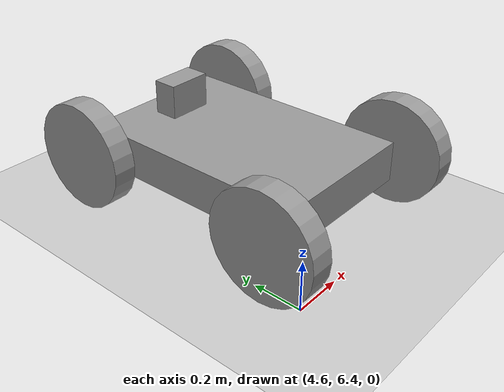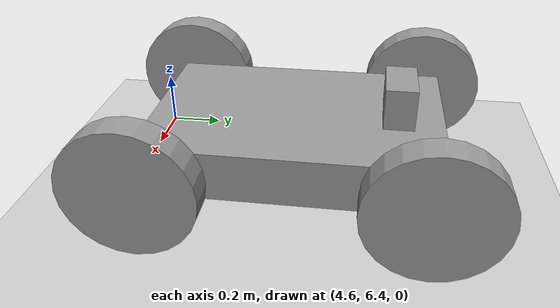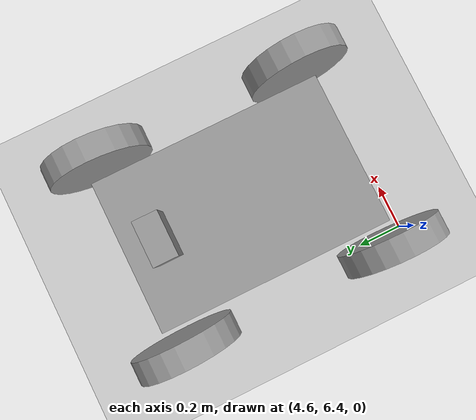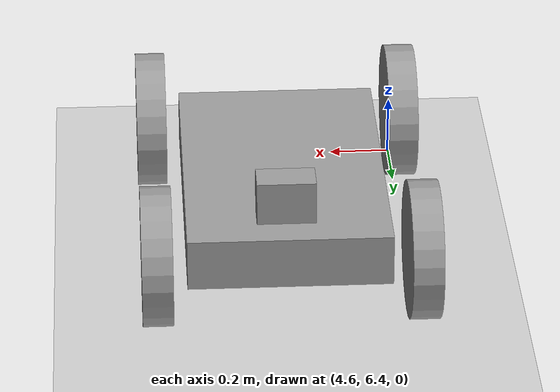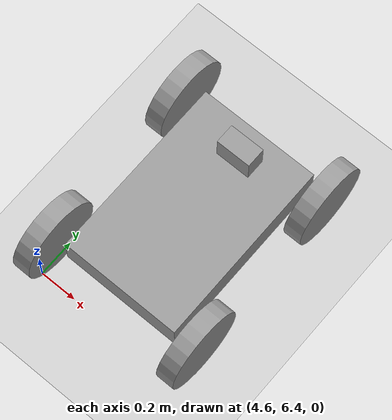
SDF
<sdf version="1.6">
 <world name="default">
  <light name="sun" type="directional">
   <pose>0 0 10 0 -0 0</pose>
   <diffuse>0.8 0.8 0.8 1</diffuse>
   <specular>0.2 0.2 0.2 1</specular>
   <attenuation>
    <range>1000</range>
    <constant>0.9</constant>
    <linear>0.01</linear>
    <quadratic>0.001</quadratic>
   </attenuation>
   <direction>-0.5 0.1 -0.9</direction>
  </light>
  <model name="ground_plane">
   <static>1</static>
   <link name="link">
    <collision name="collision">
     <geometry><plane><normal>0 0 1</normal><size>100 100</size></plane></geometry>
     <surface>
      <contact><collide_bitmask>65535</collide_bitmask></contact>
      <friction><ode><mu>100</mu><mu2>50</mu2></ode></friction>
     </surface>
    </collision>
    <visual name="visual">
     <cast_shadows>0</cast_shadows>
     <geometry><plane><normal>0 0 1</normal><size>100 100</size></plane></geometry>
     <material>
      <script><uri>file://media/materials/scripts/gazebo.material</uri><name>Gazebo/Grey</name></script>
     </material>
    </visual>
   </link>
  </model>
  <gravity>0 0 -9.8</gravity>
  <magnetic_field>6e-06 2.3e-05 -4.2e-05</magnetic_field>
  <atmosphere type="adiabatic"/>
  <physics name="default_physics" default="0" type="ode">
   <max_step_size>0.001</max_step_size>
   <real_time_factor>1</real_time_factor>
   <real_time_update_rate>1000</real_time_update_rate>
  </physics>
  <scene><ambient>0.4 0.4 0.4 1</ambient><background>0.7 0.7 0.7 1</background><shadows>1</shadows></scene>
  <audio><device>default</device></audio>
  <spherical_coordinates>
   <surface_model>EARTH_WGS84</surface_model>
   <latitude_deg>0</latitude_deg>
   <longitude_deg>0</longitude_deg>
   <elevation>0</elevation>
   <heading_deg>0</heading_deg>
  </spherical_coordinates>
  <include><name>marlin</name><pose>5 7 0.23 0 0 0</pose><uri>model://marlin</uri></include>
 </world>
</sdf>

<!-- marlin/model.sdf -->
<sdf version='1.6'>
  <model name='roadrunner3'>
    <link name='link_1'>
      <inertial>
        <mass>5</mass>
        <inertia>
          <ixx>0.428684</ixx>
          <ixy>0</ixy>
          <ixz>0</ixz>
          <iyy>0.190336</iyy>
          <iyz>0</iyz>
          <izz>0.594986</izz>
        </inertia>
        <pose frame=''>0 0 0 0 -0 0</pose>
      </inertial>
      <pose frame=''>-0 0.00914 -0.007545 0 -0 0</pose>
      <gravity>1</gravity>
      <self_collide>0</self_collide>
      <kinematic>0</kinematic>
      <enable_wind>0</enable_wind>
      <visual name='visual'>
        <pose frame=''>0 0 0 0 -0 0</pose>
        <geometry>
          <box>
            <size>0.654191 1 0.169826</size>
          </box>
        </geometry>
        <material>
          <lighting>1</lighting>
          <script>
            <uri>file://media/materials/scripts/gazebo.material</uri>
            <name>Gazebo/Grey</name>
          </script>
          <shader type='vertex'>
            <normal_map>__default__</normal_map>
          </shader>
          <ambient>0.3 0.3 0.3 1</ambient>
          <diffuse>0.7 0.7 0.7 1</diffuse>
          <specular>0.01 0.01 0.01 1</specular>
          <emissive>0 0 0 1</emissive>
        </material>
        <transparency>0</transparency>
        <cast_shadows>1</cast_shadows>
      </visual>
      <collision name='collision'>
        <laser_retro>0</laser_retro>
        <max_contacts>10</max_contacts>
        <pose frame=''>0 0 0 0 -0 0</pose>
        <geometry>
          <box>
            <size>0.654191 1 0.169826</size>
          </box>
        </geometry>
        <surface>
          <friction>
            <ode>
              <mu>1</mu>
              <mu2>1</mu2>
              <fdir1>0 0 0</fdir1>
              <slip1>0</slip1>
              <slip2>0</slip2>
            </ode>
            <torsional>
              <coefficient>1</coefficient>
              <patch_radius>0</patch_radius>
              <surface_radius>0</surface_radius>
              <use_patch_radius>1</use_patch_radius>
              <ode>
                <slip>0</slip>
              </ode>
            </torsional>
          </friction>
          <bounce>
            <restitution_coefficient>0</restitution_coefficient>
            <threshold>1e+06</threshold>
          </bounce>
          <contact>
            <collide_without_contact>0</collide_without_contact>
            <collide_without_contact_bitmask>1</collide_without_contact_bitmask>
            <collide_bitmask>1</collide_bitmask>
            <ode>
              <soft_cfm>0</soft_cfm>
              <soft_erp>0.2</soft_erp>
              <kp>1e+13</kp>
              <kd>1</kd>
              <max_vel>0.01</max_vel>
              <min_depth>0</min_depth>
            </ode>
            <bullet>
              <split_impulse>1</split_impulse>
              <split_impulse_penetration_threshold>-0.01</split_impulse_penetration_threshold>
              <soft_cfm>0</soft_cfm>
              <soft_erp>0.2</soft_erp>
              <kp>1e+13</kp>
              <kd>1</kd>
            </bullet>
          </contact>
        </surface>
      </collision>
    </link>
    <link name='link_1_0'>
      <inertial>
        <mass>0.00311427</mass>
        <inertia>
          <ixx>9.31086e-06</ixx>
          <ixy>0</ixy>
          <ixz>0</ixz>
          <iyy>1.57288e-05</iyy>
          <iyz>0</iyz>
          <izz>1.20857e-05</izz>
        </inertia>
        <pose frame=''>0 0 0 0 -0 0</pose>
      </inertial>
      <pose frame=''>0.007573 0.353081 0.141239 0 1e-06 -1e-05</pose>
      <visual name='visual'>
        <pose frame=''>0 0 0 0 -0 0</pose>
        <geometry>
          <box>
            <size>0.188811 0.104497 0.157979</size>
          </box>
        </geometry>
        <material>
          <lighting>1</lighting>
          <script>
            <uri>file://media/materials/scripts/gazebo.material</uri>
            <name>Gazebo/Grey</name>
          </script>
          <emissive>0 0 0 1</emissive>
        </material>
        <transparency>0</transparency>
        <cast_shadows>1</cast_shadows>
      </visual>
      <collision name='collision'>
        <laser_retro>0</laser_retro>
        <max_contacts>10</max_contacts>
        <pose frame=''>0 0 0 0 -0 0</pose>
        <geometry>
          <box>
            <size>0.188811 0.104497 0.157979</size>
          </box>
        </geometry>
        <surface>
          <friction>
            <ode>
              <mu>1</mu>
              <mu2>1</mu2>
              <fdir1>0 0 0</fdir1>
              <slip1>0</slip1>
              <slip2>0</slip2>
            </ode>
            <torsional>
              <coefficient>1</coefficient>
              <patch_radius>0</patch_radius>
              <surface_radius>0</surface_radius>
              <use_patch_radius>1</use_patch_radius>
              <ode>
                <slip>0</slip>
              </ode>
            </torsional>
          </friction>
          <bounce>
            <restitution_coefficient>0</restitution_coefficient>
            <threshold>1e+06</threshold>
          </bounce>
          <contact>
            <collide_without_contact>0</collide_without_contact>
            <collide_without_contact_bitmask>1</collide_without_contact_bitmask>
            <collide_bitmask>1</collide_bitmask>
            <ode>
              <soft_cfm>0</soft_cfm>
              <soft_erp>0.2</soft_erp>
              <kp>1e+13</kp>
              <kd>1</kd>
              <max_vel>0.01</max_vel>
              <min_depth>0</min_depth>
            </ode>
            <bullet>
              <split_impulse>1</split_impulse>
              <split_impulse_penetration_threshold>-0.01</split_impulse_penetration_threshold>
              <soft_cfm>0</soft_cfm>
              <soft_erp>0.2</soft_erp>
              <kp>1e+13</kp>
              <kd>1</kd>
            </bullet>
          </contact>
        </surface>
      </collision>
    </link>
    <link name='link_2'>
      <inertial>
        <mass>1</mass>
        <inertia>
          <ixx>0.0131563</ixx>
          <ixy>0</ixy>
          <ixz>0</ixz>
          <iyy>0.0131563</iyy>
          <iyz>0</iyz>
          <izz>0.0247202</izz>
        </inertia>
        <pose frame=''>0 0 0 0 -0 0</pose>
      </inertial>
      <pose frame=''>0.422661 -0.451098 0.001886 -3.14159 -1.57079 -3e-06</pose>
      <gravity>1</gravity>
      <self_collide>0</self_collide>
      <kinematic>0</kinematic>
      <enable_wind>0</enable_wind>
      <visual name='visual'>
        <pose frame=''>0 0 0 0 -0 0</pose>
        <geometry>
          <cylinder>
            <radius>0.222352</radius>
            <length>0.0977479</length>
          </cylinder>
        </geometry>
        <material>
          <lighting>1</lighting>
          <script>
            <uri>file://media/materials/scripts/gazebo.material</uri>
            <name>Gazebo/Grey</name>
          </script>
          <shader type='vertex'>
            <normal_map>__default__</normal_map>
          </shader>
          <ambient>0.3 0.3 0.3 1</ambient>
          <diffuse>0.7 0.7 0.7 1</diffuse>
          <specular>0.01 0.01 0.01 1</specular>
          <emissive>0 0 0 1</emissive>
        </material>
        <transparency>0</transparency>
        <cast_shadows>1</cast_shadows>
      </visual>
      <collision name='collision'>
        <laser_retro>0</laser_retro>
        <max_contacts>10</max_contacts>
        <pose frame=''>0 0 0 0 -0 0</pose>
        <geometry>
          <cylinder>
            <radius>0.222352</radius>
            <length>0.097748</length>
          </cylinder>
        </geometry>
        <surface>
          <friction>
            <ode>
              <mu>1</mu>
              <mu2>1</mu2>
              <fdir1>0 0 0</fdir1>
              <slip1>0</slip1>
              <slip2>0</slip2>
            </ode>
            <torsional>
              <coefficient>1</coefficient>
              <patch_radius>0</patch_radius>
              <surface_radius>0</surface_radius>
              <use_patch_radius>1</use_patch_radius>
              <ode>
                <slip>0</slip>
              </ode>
            </torsional>
          </friction>
          <bounce>
            <restitution_coefficient>0</restitution_coefficient>
            <threshold>1e+06</threshold>
          </bounce>
          <contact>
            <collide_without_contact>0</collide_without_contact>
            <collide_without_contact_bitmask>1</collide_without_contact_bitmask>
            <collide_bitmask>1</collide_bitmask>
            <ode>
              <soft_cfm>0</soft_cfm>
              <soft_erp>0.2</soft_erp>
              <kp>1e+13</kp>
              <kd>1</kd>
              <max_vel>0.01</max_vel>
              <min_depth>0</min_depth>
            </ode>
            <bullet>
              <split_impulse>1</split_impulse>
              <split_impulse_penetration_threshold>-0.01</split_impulse_penetration_threshold>
              <soft_cfm>0</soft_cfm>
              <soft_erp>0.2</soft_erp>
              <kp>1e+13</kp>
              <kd>1</kd>
            </bullet>
          </contact>
        </surface>
      </collision>
    </link>
    <link name='link_2_clone'>
      <inertial>
        <mass>1</mass>
        <inertia>
          <ixx>0.0131563</ixx>
          <ixy>0</ixy>
          <ixz>0</ixz>
          <iyy>0.0131563</iyy>
          <iyz>0</iyz>
          <izz>0.0247202</izz>
        </inertia>
        <pose frame=''>0 0 0 0 -0 0</pose>
      </inertial>
      <pose frame=''>-0.422661 0.457533 0.001886 -3.14159 -1.57079 -3e-06</pose>
      <gravity>1</gravity>
      <self_collide>0</self_collide>
      <kinematic>0</kinematic>
      <enable_wind>0</enable_wind>
      <visual name='visual'>
        <pose frame=''>0 0 0 0 -0 0</pose>
        <geometry>
          <cylinder>
            <radius>0.222352</radius>
            <length>0.0977479</length>
          </cylinder>
        </geometry>
        <material>
          <lighting>1</lighting>
          <script>
            <uri>file://media/materials/scripts/gazebo.material</uri>
            <name>Gazebo/Grey</name>
          </script>
          <shader type='vertex'>
            <normal_map>__default__</normal_map>
          </shader>
          <ambient>0.3 0.3 0.3 1</ambient>
          <diffuse>0.7 0.7 0.7 1</diffuse>
          <specular>0.01 0.01 0.01 1</specular>
          <emissive>0 0 0 1</emissive>
        </material>
        <transparency>0</transparency>
        <cast_shadows>1</cast_shadows>
      </visual>
      <collision name='collision'>
        <laser_retro>0</laser_retro>
        <max_contacts>10</max_contacts>
        <pose frame=''>0 0 0 0 -0 0</pose>
        <geometry>
          <cylinder>
            <radius>0.222352</radius>
            <length>0.097748</length>
          </cylinder>
        </geometry>
        <surface>
          <friction>
            <ode>
              <mu>1</mu>
              <mu2>1</mu2>
              <fdir1>0 0 0</fdir1>
              <slip1>0</slip1>
              <slip2>0</slip2>
            </ode>
            <torsional>
              <coefficient>1</coefficient>
              <patch_radius>0</patch_radius>
              <surface_radius>0</surface_radius>
              <use_patch_radius>1</use_patch_radius>
              <ode>
                <slip>0</slip>
              </ode>
            </torsional>
          </friction>
          <bounce>
            <restitution_coefficient>0</restitution_coefficient>
            <threshold>1e+06</threshold>
          </bounce>
          <contact>
            <collide_without_contact>0</collide_without_contact>
            <collide_without_contact_bitmask>1</collide_without_contact_bitmask>
            <collide_bitmask>1</collide_bitmask>
            <ode>
              <soft_cfm>0</soft_cfm>
              <soft_erp>0.2</soft_erp>
              <kp>1e+13</kp>
              <kd>1</kd>
              <max_vel>0.01</max_vel>
              <min_depth>0</min_depth>
            </ode>
            <bullet>
              <split_impulse>1</split_impulse>
              <split_impulse_penetration_threshold>-0.01</split_impulse_penetration_threshold>
              <soft_cfm>0</soft_cfm>
              <soft_erp>0.2</soft_erp>
              <kp>1e+13</kp>
              <kd>1</kd>
            </bullet>
          </contact>
        </surface>
      </collision>
    </link>
    <link name='link_2_clone_0'>
      <inertial>
        <mass>1</mass>
        <inertia>
          <ixx>0.0131563</ixx>
          <ixy>0</ixy>
          <ixz>0</ixz>
          <iyy>0.0131563</iyy>
          <iyz>0</iyz>
          <izz>0.0247202</izz>
        </inertia>
        <pose frame=''>0 0 0 0 -0 0</pose>
      </inertial>
      <pose frame=''>-0.422661 -0.473107 0.001886 -3.14159 -1.57079 -3e-06</pose>
      <gravity>1</gravity>
      <self_collide>0</self_collide>
      <kinematic>0</kinematic>
      <enable_wind>0</enable_wind>
      <visual name='visual'>
        <pose frame=''>0 0 0 0 -0 0</pose>
        <geometry>
          <cylinder>
            <radius>0.222352</radius>
            <length>0.0977479</length>
          </cylinder>
        </geometry>
        <material>
          <lighting>1</lighting>
          <script>
            <uri>file://media/materials/scripts/gazebo.material</uri>
            <name>Gazebo/Grey</name>
          </script>
          <shader type='vertex'>
            <normal_map>__default__</normal_map>
          </shader>
          <ambient>0.3 0.3 0.3 1</ambient>
          <diffuse>0.7 0.7 0.7 1</diffuse>
          <specular>0.01 0.01 0.01 1</specular>
          <emissive>0 0 0 1</emissive>
        </material>
        <transparency>0</transparency>
        <cast_shadows>1</cast_shadows>
      </visual>
      <collision name='collision'>
        <laser_retro>0</laser_retro>
        <max_contacts>10</max_contacts>
        <pose frame=''>0 0 0 0 -0 0</pose>
        <geometry>
          <cylinder>
            <radius>0.222352</radius>
            <length>0.097748</length>
          </cylinder>
        </geometry>
        <surface>
          <friction>
            <ode>
              <mu>1</mu>
              <mu2>1</mu2>
              <fdir1>0 0 0</fdir1>
              <slip1>0</slip1>
              <slip2>0</slip2>
            </ode>
            <torsional>
              <coefficient>1</coefficient>
              <patch_radius>0</patch_radius>
              <surface_radius>0</surface_radius>
              <use_patch_radius>1</use_patch_radius>
              <ode>
                <slip>0</slip>
              </ode>
            </torsional>
          </friction>
          <bounce>
            <restitution_coefficient>0</restitution_coefficient>
            <threshold>1e+06</threshold>
          </bounce>
          <contact>
            <collide_without_contact>0</collide_without_contact>
            <collide_without_contact_bitmask>1</collide_without_contact_bitmask>
            <collide_bitmask>1</collide_bitmask>
            <ode>
              <soft_cfm>0</soft_cfm>
              <soft_erp>0.2</soft_erp>
              <kp>1e+13</kp>
              <kd>1</kd>
              <max_vel>0.01</max_vel>
              <min_depth>0</min_depth>
            </ode>
            <bullet>
              <split_impulse>1</split_impulse>
              <split_impulse_penetration_threshold>-0.01</split_impulse_penetration_threshold>
              <soft_cfm>0</soft_cfm>
              <soft_erp>0.2</soft_erp>
              <kp>1e+13</kp>
              <kd>1</kd>
            </bullet>
          </contact>
        </surface>
      </collision>
    </link>
    <link name='link_2_clone_clone'>
      <inertial>
        <mass>1</mass>
        <inertia>
          <ixx>0.0131563</ixx>
          <ixy>0</ixy>
          <ixz>0</ixz>
          <iyy>0.0131563</iyy>
          <iyz>0</iyz>
          <izz>0.0247202</izz>
        </inertia>
        <pose frame=''>0 0 0 0 -0 0</pose>
      </inertial>
      <pose frame=''>0.422661 0.457533 0.001886 -3.14159 -1.57079 -3e-06</pose>
      <gravity>1</gravity>
      <self_collide>0</self_collide>
      <kinematic>0</kinematic>
      <enable_wind>0</enable_wind>
      <visual name='visual'>
        <pose frame=''>0 0 0 0 -0 0</pose>
        <geometry>
          <cylinder>
            <radius>0.222352</radius>
            <length>0.0977479</length>
          </cylinder>
        </geometry>
        <material>
          <lighting>1</lighting>
          <script>
            <uri>file://media/materials/scripts/gazebo.material</uri>
            <name>Gazebo/Grey</name>
          </script>
          <shader type='vertex'>
            <normal_map>__default__</normal_map>
          </shader>
          <ambient>0.3 0.3 0.3 1</ambient>
          <diffuse>0.7 0.7 0.7 1</diffuse>
          <specular>0.01 0.01 0.01 1</specular>
          <emissive>0 0 0 1</emissive>
        </material>
        <transparency>0</transparency>
        <cast_shadows>1</cast_shadows>
      </visual>
      <collision name='collision'>
        <laser_retro>0</laser_retro>
        <max_contacts>10</max_contacts>
        <pose frame=''>0 0 0 0 -0 0</pose>
        <geometry>
          <cylinder>
            <radius>0.222352</radius>
            <length>0.097748</length>
          </cylinder>
        </geometry>
        <surface>
          <friction>
            <ode>
              <mu>1</mu>
              <mu2>1</mu2>
              <fdir1>0 0 0</fdir1>
              <slip1>0</slip1>
              <slip2>0</slip2>
            </ode>
            <torsional>
              <coefficient>1</coefficient>
              <patch_radius>0</patch_radius>
              <surface_radius>0</surface_radius>
              <use_patch_radius>1</use_patch_radius>
              <ode>
                <slip>0</slip>
              </ode>
            </torsional>
          </friction>
          <bounce>
            <restitution_coefficient>0</restitution_coefficient>
            <threshold>1e+06</threshold>
          </bounce>
          <contact>
            <collide_without_contact>0</collide_without_contact>
            <collide_without_contact_bitmask>1</collide_without_contact_bitmask>
            <collide_bitmask>1</collide_bitmask>
            <ode>
              <soft_cfm>0</soft_cfm>
              <soft_erp>0.2</soft_erp>
              <kp>1e+13</kp>
              <kd>1</kd>
              <max_vel>0.01</max_vel>
              <min_depth>0</min_depth>
            </ode>
            <bullet>
              <split_impulse>1</split_impulse>
              <split_impulse_penetration_threshold>-0.01</split_impulse_penetration_threshold>
              <soft_cfm>0</soft_cfm>
              <soft_erp>0.2</soft_erp>
              <kp>1e+13</kp>
              <kd>1</kd>
            </bullet>
          </contact>
        </surface>
      </collision>
    </link>
    <joint name='link_1_0_JOINT_1' type='fixed'>
      <parent>link_1_0</parent>
      <child>link_1</child>
      <pose frame=''>0 0 0 0 -0 0</pose>
      <physics>
        <ode>
          <limit>
            <cfm>0</cfm>
            <erp>0.2</erp>
          </limit>
          <suspension>
            <cfm>0</cfm>
            <erp>0.2</erp>
          </suspension>
        </ode>
      </physics>
    </joint>
    <joint name='link_1_JOINT_0' type='revolute'>
      <parent>link_1</parent>
      <child>link_2_clone_clone</child>
      <pose frame=''>0 0 0 0 -0 0</pose>
      <axis>
        <xyz>0 0 1</xyz>
        <use_parent_model_frame>0</use_parent_model_frame>
        <limit>
          <lower>-1.79769e+308</lower>
          <upper>1.79769e+308</upper>
          <effort>-1</effort>
          <velocity>-1</velocity>
        </limit>
        <dynamics>
          <spring_reference>0</spring_reference>
          <spring_stiffness>0</spring_stiffness>
          <damping>0</damping>
          <friction>0</friction>
        </dynamics>
      </axis>
      <physics>
        <ode>
          <limit>
            <cfm>0</cfm>
            <erp>0.2</erp>
          </limit>
          <suspension>
            <cfm>0</cfm>
            <erp>0.2</erp>
          </suspension>
        </ode>
      </physics>
    </joint>
    <joint name='link_1_JOINT_1' type='revolute'>
      <parent>link_1</parent>
      <child>link_2</child>
      <pose frame=''>0 0 0 0 -0 0</pose>
      <axis>
        <xyz>0 0 1</xyz>
        <use_parent_model_frame>0</use_parent_model_frame>
        <limit>
          <lower>-1.79769e+308</lower>
          <upper>1.79769e+308</upper>
          <effort>-1</effort>
          <velocity>-1</velocity>
        </limit>
        <dynamics>
          <spring_reference>0</spring_reference>
          <spring_stiffness>0</spring_stiffness>
          <damping>0</damping>
          <friction>0</friction>
        </dynamics>
      </axis>
      <physics>
        <ode>
          <limit>
            <cfm>0</cfm>
            <erp>0.2</erp>
          </limit>
          <suspension>
            <cfm>0</cfm>
            <erp>0.2</erp>
          </suspension>
        </ode>
      </physics>
    </joint>
    <joint name='link_1_JOINT_2' type='revolute'>
      <parent>link_1</parent>
      <child>link_2_clone</child>
      <pose frame=''>0 0 0 0 -0 0</pose>
      <axis>
        <xyz>0 0 1</xyz>
        <use_parent_model_frame>0</use_parent_model_frame>
        <limit>
          <lower>-1.79769e+308</lower>
          <upper>1.79769e+308</upper>
          <effort>-1</effort>
          <velocity>-1</velocity>
        </limit>
        <dynamics>
          <spring_reference>0</spring_reference>
          <spring_stiffness>0</spring_stiffness>
          <damping>0</damping>
          <friction>0</friction>
        </dynamics>
      </axis>
      <physics>
        <ode>
          <limit>
            <cfm>0</cfm>
            <erp>0.2</erp>
          </limit>
          <suspension>
            <cfm>0</cfm>
            <erp>0.2</erp>
          </suspension>
        </ode>
      </physics>
    </joint>
    <joint name='link_1_JOINT_3' type='revolute'>
      <parent>link_1</parent>
      <child>link_2_clone_0</child>
      <pose frame=''>0 0 0 0 -0 0</pose>
      <axis>
        <xyz>0 0 1</xyz>
        <use_parent_model_frame>0</use_parent_model_frame>
        <limit>
          <lower>-1.79769e+308</lower>
          <upper>1.79769e+308</upper>
          <effort>-1</effort>
          <velocity>-1</velocity>
        </limit>
        <dynamics>
          <spring_reference>0</spring_reference>
          <spring_stiffness>0</spring_stiffness>
          <damping>0</damping>
          <friction>0</friction>
        </dynamics>
      </axis>
      <physics>
        <ode>
          <limit>
            <cfm>0</cfm>
            <erp>0.2</erp>
          </limit>
          <suspension>
            <cfm>0</cfm>
            <erp>0.2</erp>
          </suspension>
        </ode>
      </physics>
    </joint>
    <static>0</static>
    <allow_auto_disable>1</allow_auto_disable>
    <plugin name='object_controller' filename='libgazebo_ros_planar_move.so'>
      <commandTopic>cmd_vel</commandTopic>
      <odometryTopic>odom</odometryTopic>
      <odometryFrame>odom</odometryFrame>
      <odometryRate>20.0</odometryRate>
      <robotBaseFrame>base_footprint</robotBaseFrame>
    </plugin>
  </model>
</sdf>
